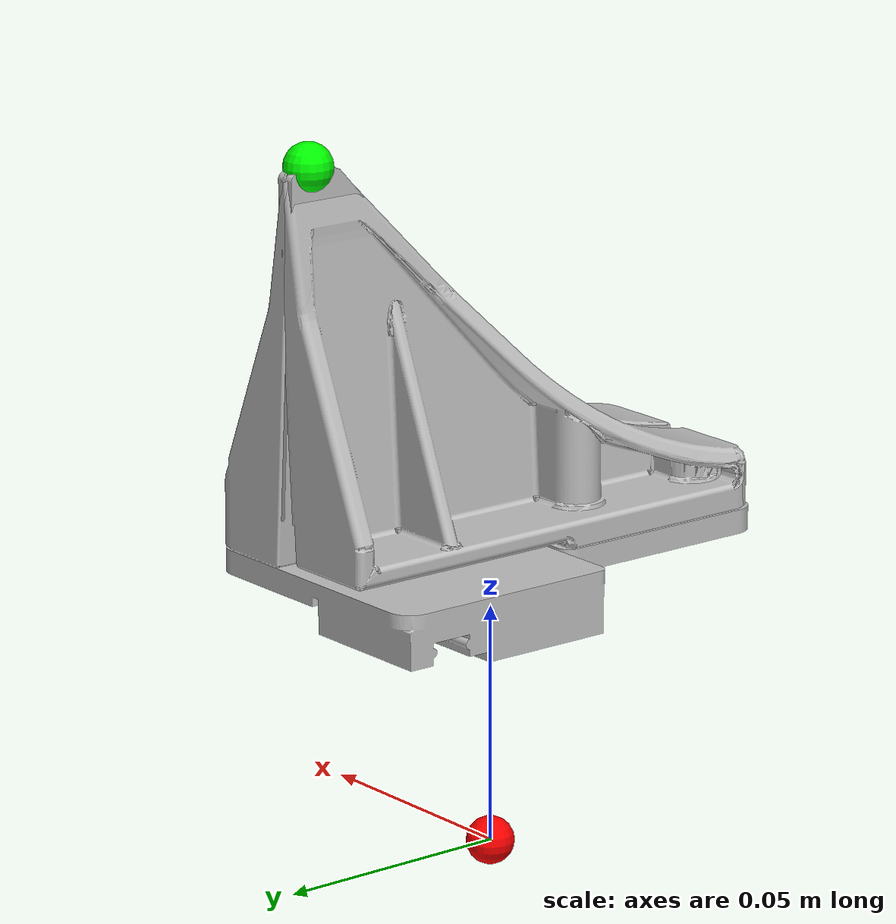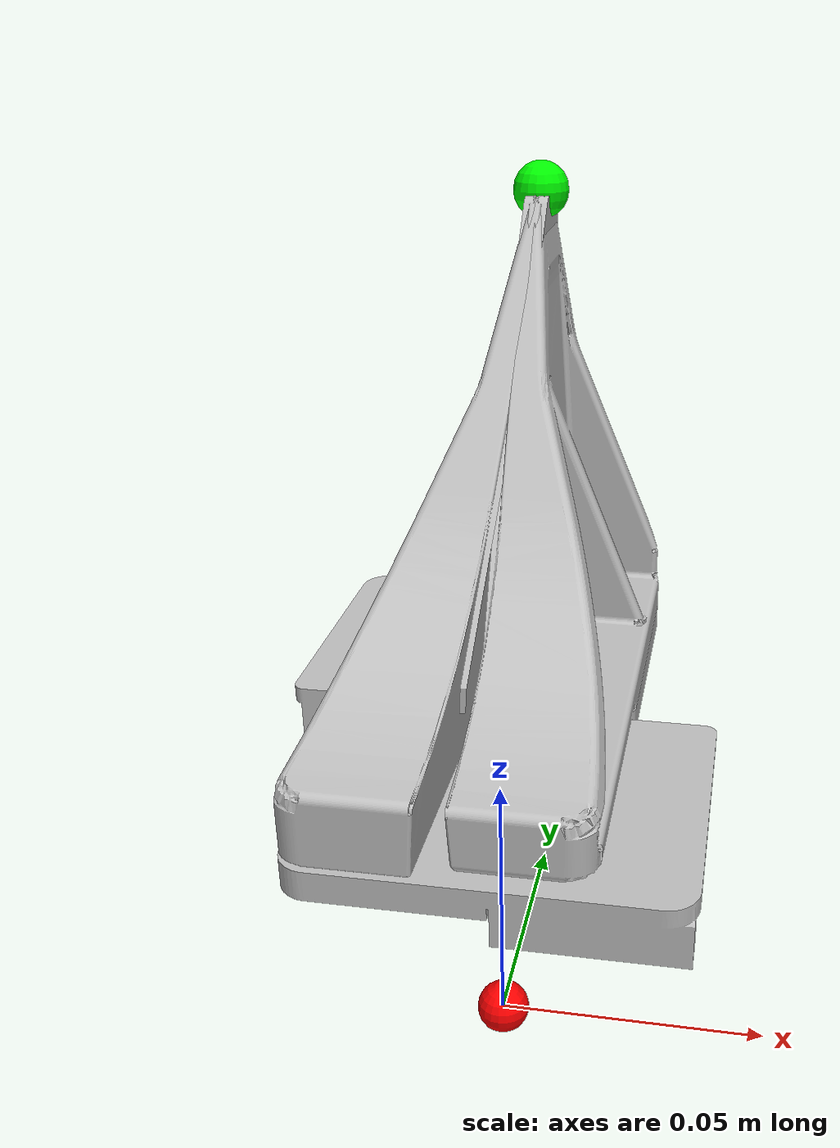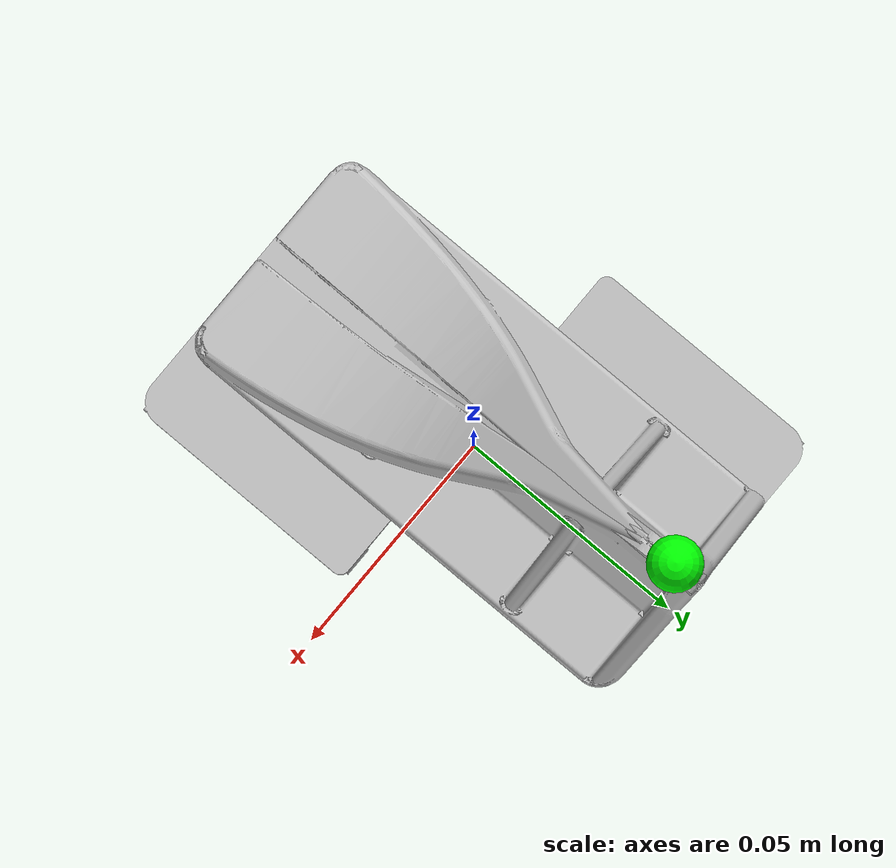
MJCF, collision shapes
<mujoco model="crank_4310">
  <compiler angle="radian" meshdir="assets"/>

  <asset>
    <mesh name="gripper" file="gripper.stl"/>
    <mesh name="tip_left" file="tip_left.stl"/>
    <mesh name="tip_right" file="tip_right.stl"/>
  </asset>

  <worldbody>
    <body name="gripper" pos="0 0 0" quat="0 0 0.70711 -0.70711">
      <inertial pos="0 -0.027 0" mass="0.45" diaginertia="0.0005 0.0004 0.0003"/>
      <geom pos="0 0.110597 -0.164101" quat="1 0 0 0" type="mesh" rgba="1 0.6 0 1" mesh="gripper" contype="0" conaffinity="0"/>
      <site name="tcp_site" pos="0 0 0" quat="0.5 0.5 0.5 -0.5" size="0.005" rgba="1 0 0 1"/>
      <site name="grasp_site" pos="8.8323e-05 -0.14676 -0.04459" quat="0.5 0.5 0.5 -0.5" size="0.005" rgba="0 1 0 1"/>
      <body name="tip_left" pos="-0.037 -0.0605 0.0392" quat="1 0 0 0">
        <inertial pos="0.03 -0.04 -0.039" mass="0.075" diaginertia="6e-5 6e-5 3e-5"/>
        <joint name="joint7" pos="0 0 0" type="slide" axis="1 0 0" range="0 0.039574"/>
        <geom pos="0.03495 0.171097 -0.203301" quat="1 0 0 0" type="mesh" rgba="0.74902 0.74902 0.74902 1" mesh="tip_left"/>
      </body>
      <body name="tip_right" pos="0.037 -0.0605 -0.0392" quat="1 0 0 0">
        <inertial pos="-0.03 -0.04 0.039" mass="0.075" diaginertia="6e-5 6e-5 3e-5"/>
        <joint name="joint8" pos="0 0 0" type="slide" axis="-1 0 0" range="0 0.039574"/>
        <geom pos="-0.03495 0.171097 -0.124901" quat="1 0 0 0" type="mesh" rgba="0.74902 0.74902 0.74902 1" mesh="tip_right"/>
      </body>
    </body>
  </worldbody>

  <equality>
    <joint joint1="joint7" joint2="joint8" polycoef="0 1 0 0 0"/>
  </equality>

  <contact>
    <exclude body1="gripper" body2="tip_left"/>
    <exclude body1="gripper" body2="tip_right"/>
    <exclude body1="tip_left" body2="tip_right"/>
  </contact>
</mujoco>
